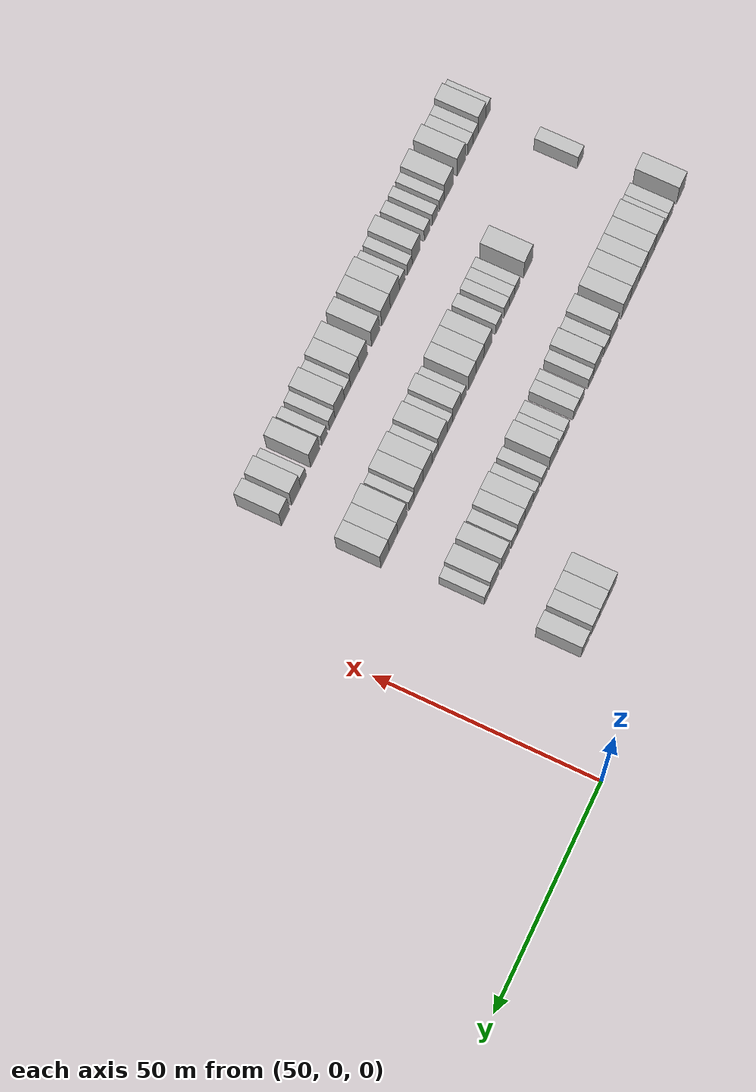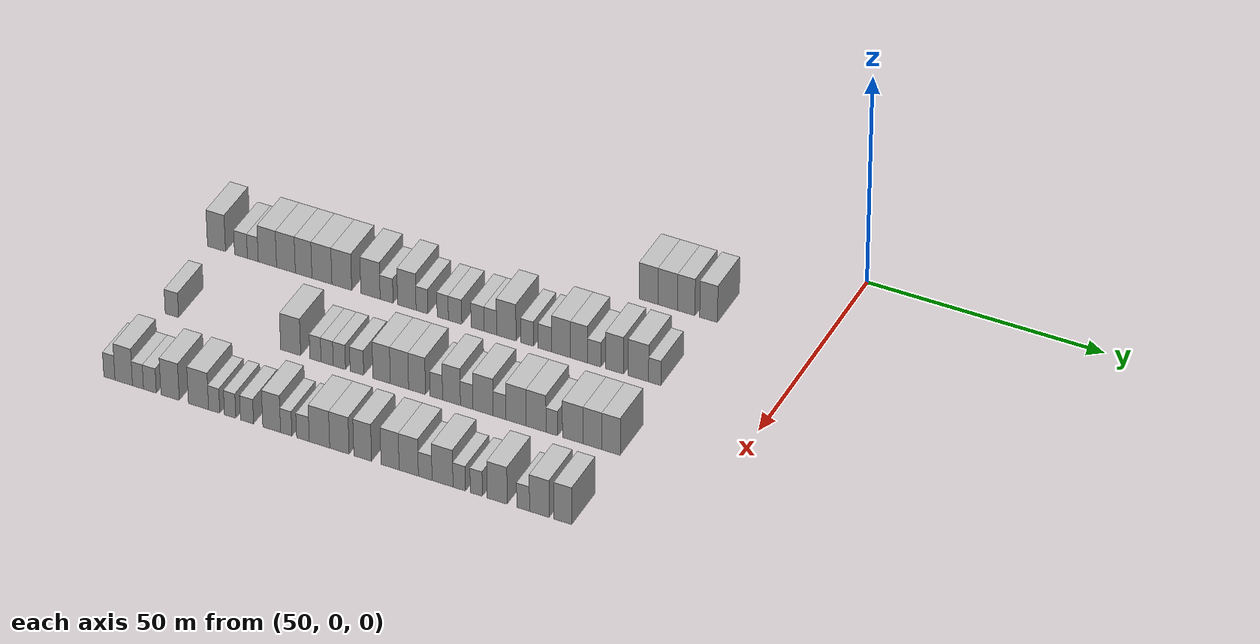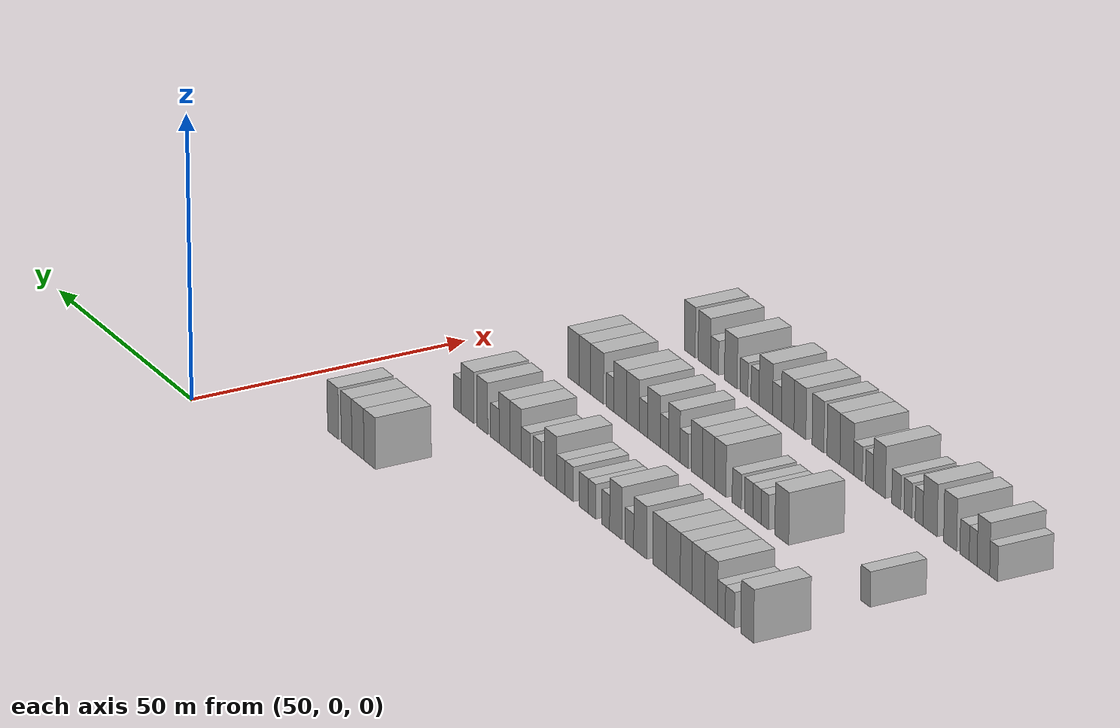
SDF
<sdf version="1.6">
 <world name="default">
  <model name="building_460">
   <static>1</static>
   <pose>69.0000 -35.8244 0 0.000000 0.000000 0.000000</pose>
   <link name="link">
    <pose>0 0 4.50 0 0 0</pose>
    <collision name="collision"><geometry><box><size>10.0000 4.0841 9.0000</size></box></geometry></collision>
    <visual name="visual">
     <cast_shadows>0</cast_shadows>
     <geometry><box><size>10.0000 4.0841 9.0000</size></box></geometry>
     <material>
      <script>
       <uri>model://HANNAS_wall/materials/scripts</uri>
       <uri>model://HANNAS_wall/materials/textures</uri>
       <name>vrc/HANNAS_wall</name>
      </script>
     </material>
    </visual>
   </link>
  </model>
  <model name="building_461">
   <static>1</static>
   <pose>69.0000 -31.6703 0 0.000000 0.000000 0.000000</pose>
   <link name="link">
    <pose>0 0 4.50 0 0 0</pose>
    <collision name="collision"><geometry><box><size>10.0000 4.2240 9.0000</size></box></geometry></collision>
    <visual name="visual">
     <cast_shadows>0</cast_shadows>
     <geometry><box><size>10.0000 4.2240 9.0000</size></box></geometry>
     <material>
      <script>
       <uri>model://HANNAS_wall/materials/scripts</uri>
       <uri>model://HANNAS_wall/materials/textures</uri>
       <name>vrc/HANNAS_wall</name>
      </script>
     </material>
    </visual>
   </link>
  </model>
  <model name="building_462">
   <static>1</static>
   <pose>69.0000 -27.6935 0 0.000000 0.000000 0.000000</pose>
   <link name="link">
    <pose>0 0 4.50 0 0 0</pose>
    <collision name="collision"><geometry><box><size>10.0000 3.7297 9.0000</size></box></geometry></collision>
    <visual name="visual">
     <cast_shadows>0</cast_shadows>
     <geometry><box><size>10.0000 3.7297 9.0000</size></box></geometry>
     <material>
      <script>
       <uri>model://HANNAS_wall/materials/scripts</uri>
       <uri>model://HANNAS_wall/materials/textures</uri>
       <name>vrc/HANNAS_wall</name>
      </script>
     </material>
    </visual>
   </link>
  </model>
  <model name="building_463">
   <static>1</static>
   <pose>69.0000 -22.9201 0 0.000000 0.000000 0.000000</pose>
   <link name="link">
    <pose>0 0 4.50 0 0 0</pose>
    <collision name="collision"><geometry><box><size>10.0000 3.8171 9.0000</size></box></geometry></collision>
    <visual name="visual">
     <cast_shadows>0</cast_shadows>
     <geometry><box><size>10.0000 3.8171 9.0000</size></box></geometry>
     <material>
      <script>
       <uri>model://HANNAS_wall/materials/scripts</uri>
       <uri>model://HANNAS_wall/materials/textures</uri>
       <name>vrc/HANNAS_wall</name>
      </script>
     </material>
    </visual>
   </link>
  </model>
  <model name="building_633">
   <static>1</static>
   <pose>91.0000 -119.1868 0 0.000000 0.000000 0.000000</pose>
   <link name="link">
    <pose>0 0 4.50 0 0 0</pose>
    <collision name="collision"><geometry><box><size>10.0000 3.9976 9.0000</size></box></geometry></collision>
    <visual name="visual">
     <cast_shadows>0</cast_shadows>
     <geometry><box><size>10.0000 3.9976 9.0000</size></box></geometry>
     <material>
      <script>
       <uri>model://HANNAS_wall/materials/scripts</uri>
       <uri>model://HANNAS_wall/materials/textures</uri>
       <name>vrc/HANNAS_wall</name>
      </script>
     </material>
    </visual>
   </link>
  </model>
  <model name="building_634">
   <static>1</static>
   <pose>91.0000 -113.7590 0 0.000000 0.000000 0.000000</pose>
   <link name="link">
    <pose>0 0 3.00 0 0 0</pose>
    <collision name="collision"><geometry><box><size>10.0000 2.8581 6.0000</size></box></geometry></collision>
    <visual name="visual">
     <cast_shadows>0</cast_shadows>
     <geometry><box><size>10.0000 2.8581 6.0000</size></box></geometry>
     <material>
      <script>
       <uri>model://HANNAS_wall/materials/scripts</uri>
       <uri>model://HANNAS_wall/materials/textures</uri>
       <name>vrc/HANNAS_wall</name>
      </script>
     </material>
    </visual>
   </link>
  </model>
  <model name="building_635">
   <static>1</static>
   <pose>91.0000 -111.1251 0 0.000000 0.000000 0.000000</pose>
   <link name="link">
    <pose>0 0 3.00 0 0 0</pose>
    <collision name="collision"><geometry><box><size>10.0000 2.4097 6.0000</size></box></geometry></collision>
    <visual name="visual">
     <cast_shadows>0</cast_shadows>
     <geometry><box><size>10.0000 2.4097 6.0000</size></box></geometry>
     <material>
      <script>
       <uri>model://HANNAS_wall/materials/scripts</uri>
       <uri>model://HANNAS_wall/materials/textures</uri>
       <name>vrc/HANNAS_wall</name>
      </script>
     </material>
    </visual>
   </link>
  </model>
  <model name="building_636">
   <static>1</static>
   <pose>91.0000 -107.9016 0 0.000000 0.000000 0.000000</pose>
   <link name="link">
    <pose>0 0 4.50 0 0 0</pose>
    <collision name="collision"><geometry><box><size>10.0000 4.0375 9.0000</size></box></geometry></collision>
    <visual name="visual">
     <cast_shadows>0</cast_shadows>
     <geometry><box><size>10.0000 4.0375 9.0000</size></box></geometry>
     <material>
      <script>
       <uri>model://HANNAS_wall/materials/scripts</uri>
       <uri>model://HANNAS_wall/materials/textures</uri>
       <name>vrc/HANNAS_wall</name>
      </script>
     </material>
    </visual>
   </link>
  </model>
  <model name="building_637">
   <static>1</static>
   <pose>91.0000 -103.8064 0 0.000000 0.000000 0.000000</pose>
   <link name="link">
    <pose>0 0 4.50 0 0 0</pose>
    <collision name="collision"><geometry><box><size>10.0000 4.1529 9.0000</size></box></geometry></collision>
    <visual name="visual">
     <cast_shadows>0</cast_shadows>
     <geometry><box><size>10.0000 4.1529 9.0000</size></box></geometry>
     <material>
      <script>
       <uri>model://HANNAS_wall/materials/scripts</uri>
       <uri>model://HANNAS_wall/materials/textures</uri>
       <name>vrc/HANNAS_wall</name>
      </script>
     </material>
    </visual>
   </link>
  </model>
  <model name="building_638">
   <static>1</static>
   <pose>91.0000 -99.9014 0 0.000000 0.000000 0.000000</pose>
   <link name="link">
    <pose>0 0 4.50 0 0 0</pose>
    <collision name="collision"><geometry><box><size>10.0000 3.6572 9.0000</size></box></geometry></collision>
    <visual name="visual">
     <cast_shadows>0</cast_shadows>
     <geometry><box><size>10.0000 3.6572 9.0000</size></box></geometry>
     <material>
      <script>
       <uri>model://HANNAS_wall/materials/scripts</uri>
       <uri>model://HANNAS_wall/materials/textures</uri>
       <name>vrc/HANNAS_wall</name>
      </script>
     </material>
    </visual>
   </link>
  </model>
  <model name="building_639">
   <static>1</static>
   <pose>91.0000 -95.8771 0 0.000000 0.000000 0.000000</pose>
   <link name="link">
    <pose>0 0 4.50 0 0 0</pose>
    <collision name="collision"><geometry><box><size>10.0000 4.3915 9.0000</size></box></geometry></collision>
    <visual name="visual">
     <cast_shadows>0</cast_shadows>
     <geometry><box><size>10.0000 4.3915 9.0000</size></box></geometry>
     <material>
      <script>
       <uri>model://HANNAS_wall/materials/scripts</uri>
       <uri>model://HANNAS_wall/materials/textures</uri>
       <name>vrc/HANNAS_wall</name>
      </script>
     </material>
    </visual>
   </link>
  </model>
  <model name="building_640">
   <static>1</static>
   <pose>91.0000 -91.5067 0 0.000000 0.000000 0.000000</pose>
   <link name="link">
    <pose>0 0 4.50 0 0 0</pose>
    <collision name="collision"><geometry><box><size>10.0000 4.3493 9.0000</size></box></geometry></collision>
    <visual name="visual">
     <cast_shadows>0</cast_shadows>
     <geometry><box><size>10.0000 4.3493 9.0000</size></box></geometry>
     <material>
      <script>
       <uri>model://HANNAS_wall/materials/scripts</uri>
       <uri>model://HANNAS_wall/materials/textures</uri>
       <name>vrc/HANNAS_wall</name>
      </script>
     </material>
    </visual>
   </link>
  </model>
  <model name="building_641">
   <static>1</static>
   <pose>91.0000 -85.2189 0 0.000000 0.000000 0.000000</pose>
   <link name="link">
    <pose>0 0 4.50 0 0 0</pose>
    <collision name="collision"><geometry><box><size>10.0000 4.2262 9.0000</size></box></geometry></collision>
    <visual name="visual">
     <cast_shadows>0</cast_shadows>
     <geometry><box><size>10.0000 4.2262 9.0000</size></box></geometry>
     <material>
      <script>
       <uri>model://HANNAS_wall/materials/scripts</uri>
       <uri>model://HANNAS_wall/materials/textures</uri>
       <name>vrc/HANNAS_wall</name>
      </script>
     </material>
    </visual>
   </link>
  </model>
  <model name="building_642">
   <static>1</static>
   <pose>91.0000 -81.6940 0 0.000000 0.000000 0.000000</pose>
   <link name="link">
    <pose>0 0 3.00 0 0 0</pose>
    <collision name="collision"><geometry><box><size>10.0000 2.8236 6.0000</size></box></geometry></collision>
    <visual name="visual">
     <cast_shadows>0</cast_shadows>
     <geometry><box><size>10.0000 2.8236 6.0000</size></box></geometry>
     <material>
      <script>
       <uri>model://HANNAS_wall/materials/scripts</uri>
       <uri>model://HANNAS_wall/materials/textures</uri>
       <name>vrc/HANNAS_wall</name>
      </script>
     </material>
    </visual>
   </link>
  </model>
  <model name="building_643">
   <static>1</static>
   <pose>91.0000 -77.2760 0 0.000000 0.000000 0.000000</pose>
   <link name="link">
    <pose>0 0 4.50 0 0 0</pose>
    <collision name="collision"><geometry><box><size>10.0000 4.0125 9.0000</size></box></geometry></collision>
    <visual name="visual">
     <cast_shadows>0</cast_shadows>
     <geometry><box><size>10.0000 4.0125 9.0000</size></box></geometry>
     <material>
      <script>
       <uri>model://HANNAS_wall/materials/scripts</uri>
       <uri>model://HANNAS_wall/materials/textures</uri>
       <name>vrc/HANNAS_wall</name>
      </script>
     </material>
    </visual>
   </link>
  </model>
  <model name="building_644">
   <static>1</static>
   <pose>91.0000 -73.9786 0 0.000000 0.000000 0.000000</pose>
   <link name="link">
    <pose>0 0 3.00 0 0 0</pose>
    <collision name="collision"><geometry><box><size>10.0000 2.5822 6.0000</size></box></geometry></collision>
    <visual name="visual">
     <cast_shadows>0</cast_shadows>
     <geometry><box><size>10.0000 2.5822 6.0000</size></box></geometry>
     <material>
      <script>
       <uri>model://HANNAS_wall/materials/scripts</uri>
       <uri>model://HANNAS_wall/materials/textures</uri>
       <name>vrc/HANNAS_wall</name>
      </script>
     </material>
    </visual>
   </link>
  </model>
  <model name="building_645">
   <static>1</static>
   <pose>91.0000 -69.4655 0 0.000000 0.000000 0.000000</pose>
   <link name="link">
    <pose>0 0 3.00 0 0 0</pose>
    <collision name="collision"><geometry><box><size>10.0000 2.4438 6.0000</size></box></geometry></collision>
    <visual name="visual">
     <cast_shadows>0</cast_shadows>
     <geometry><box><size>10.0000 2.4438 6.0000</size></box></geometry>
     <material>
      <script>
       <uri>model://HANNAS_wall/materials/scripts</uri>
       <uri>model://HANNAS_wall/materials/textures</uri>
       <name>vrc/HANNAS_wall</name>
      </script>
     </material>
    </visual>
   </link>
  </model>
  <model name="building_646">
   <static>1</static>
   <pose>91.0000 -66.7891 0 0.000000 0.000000 0.000000</pose>
   <link name="link">
    <pose>0 0 3.00 0 0 0</pose>
    <collision name="collision"><geometry><box><size>10.0000 2.9090 6.0000</size></box></geometry></collision>
    <visual name="visual">
     <cast_shadows>0</cast_shadows>
     <geometry><box><size>10.0000 2.9090 6.0000</size></box></geometry>
     <material>
      <script>
       <uri>model://HANNAS_wall/materials/scripts</uri>
       <uri>model://HANNAS_wall/materials/textures</uri>
       <name>vrc/HANNAS_wall</name>
      </script>
     </material>
    </visual>
   </link>
  </model>
  <model name="building_647">
   <static>1</static>
   <pose>91.0000 -61.9415 0 0.000000 0.000000 0.000000</pose>
   <link name="link">
    <pose>0 0 3.00 0 0 0</pose>
    <collision name="collision"><geometry><box><size>10.0000 2.7862 6.0000</size></box></geometry></collision>
    <visual name="visual">
     <cast_shadows>0</cast_shadows>
     <geometry><box><size>10.0000 2.7862 6.0000</size></box></geometry>
     <material>
      <script>
       <uri>model://HANNAS_wall/materials/scripts</uri>
       <uri>model://HANNAS_wall/materials/textures</uri>
       <name>vrc/HANNAS_wall</name>
      </script>
     </material>
    </visual>
   </link>
  </model>
  <model name="building_648">
   <static>1</static>
   <pose>91.0000 -59.1739 0 0.000000 0.000000 0.000000</pose>
   <link name="link">
    <pose>0 0 3.00 0 0 0</pose>
    <collision name="collision"><geometry><box><size>10.0000 2.7491 6.0000</size></box></geometry></collision>
    <visual name="visual">
     <cast_shadows>0</cast_shadows>
     <geometry><box><size>10.0000 2.7491 6.0000</size></box></geometry>
     <material>
      <script>
       <uri>model://HANNAS_wall/materials/scripts</uri>
       <uri>model://HANNAS_wall/materials/textures</uri>
       <name>vrc/HANNAS_wall</name>
      </script>
     </material>
    </visual>
   </link>
  </model>
  <model name="building_649">
   <static>1</static>
   <pose>91.0000 -55.7033 0 0.000000 0.000000 0.000000</pose>
   <link name="link">
    <pose>0 0 4.50 0 0 0</pose>
    <collision name="collision"><geometry><box><size>10.0000 4.1919 9.0000</size></box></geometry></collision>
    <visual name="visual">
     <cast_shadows>0</cast_shadows>
     <geometry><box><size>10.0000 4.1919 9.0000</size></box></geometry>
     <material>
      <script>
       <uri>model://HANNAS_wall/materials/scripts</uri>
       <uri>model://HANNAS_wall/materials/textures</uri>
       <name>vrc/HANNAS_wall</name>
      </script>
     </material>
    </visual>
   </link>
  </model>
  <model name="building_650">
   <static>1</static>
   <pose>91.0000 -51.2321 0 0.000000 0.000000 0.000000</pose>
   <link name="link">
    <pose>0 0 3.00 0 0 0</pose>
    <collision name="collision"><geometry><box><size>10.0000 2.7505 6.0000</size></box></geometry></collision>
    <visual name="visual">
     <cast_shadows>0</cast_shadows>
     <geometry><box><size>10.0000 2.7505 6.0000</size></box></geometry>
     <material>
      <script>
       <uri>model://HANNAS_wall/materials/scripts</uri>
       <uri>model://HANNAS_wall/materials/textures</uri>
       <name>vrc/HANNAS_wall</name>
      </script>
     </material>
    </visual>
   </link>
  </model>
  <model name="building_651">
   <static>1</static>
   <pose>91.0000 -47.3952 0 0.000000 0.000000 0.000000</pose>
   <link name="link">
    <pose>0 0 3.00 0 0 0</pose>
    <collision name="collision"><geometry><box><size>10.0000 2.9234 6.0000</size></box></geometry></collision>
    <visual name="visual">
     <cast_shadows>0</cast_shadows>
     <geometry><box><size>10.0000 2.9234 6.0000</size></box></geometry>
     <material>
      <script>
       <uri>model://HANNAS_wall/materials/scripts</uri>
       <uri>model://HANNAS_wall/materials/textures</uri>
       <name>vrc/HANNAS_wall</name>
      </script>
     </material>
    </visual>
   </link>
  </model>
  <model name="building_652">
   <static>1</static>
   <pose>91.0000 -43.9113 0 0.000000 0.000000 0.000000</pose>
   <link name="link">
    <pose>0 0 4.50 0 0 0</pose>
    <collision name="collision"><geometry><box><size>10.0000 4.0444 9.0000</size></box></geometry></collision>
    <visual name="visual">
     <cast_shadows>0</cast_shadows>
     <geometry><box><size>10.0000 4.0444 9.0000</size></box></geometry>
     <material>
      <script>
       <uri>model://HANNAS_wall/materials/scripts</uri>
       <uri>model://HANNAS_wall/materials/textures</uri>
       <name>vrc/HANNAS_wall</name>
      </script>
     </material>
    </visual>
   </link>
  </model>
  <model name="building_653">
   <static>1</static>
   <pose>91.0000 -40.0867 0 0.000000 0.000000 0.000000</pose>
   <link name="link">
    <pose>0 0 4.50 0 0 0</pose>
    <collision name="collision"><geometry><box><size>10.0000 3.6049 9.0000</size></box></geometry></collision>
    <visual name="visual">
     <cast_shadows>0</cast_shadows>
     <geometry><box><size>10.0000 3.6049 9.0000</size></box></geometry>
     <material>
      <script>
       <uri>model://HANNAS_wall/materials/scripts</uri>
       <uri>model://HANNAS_wall/materials/textures</uri>
       <name>vrc/HANNAS_wall</name>
      </script>
     </material>
    </visual>
   </link>
  </model>
  <model name="building_654">
   <static>1</static>
   <pose>91.0000 -36.8479 0 0.000000 0.000000 0.000000</pose>
   <link name="link">
    <pose>0 0 3.00 0 0 0</pose>
    <collision name="collision"><geometry><box><size>10.0000 2.8727 6.0000</size></box></geometry></collision>
    <visual name="visual">
     <cast_shadows>0</cast_shadows>
     <geometry><box><size>10.0000 2.8727 6.0000</size></box></geometry>
     <material>
      <script>
       <uri>model://HANNAS_wall/materials/scripts</uri>
       <uri>model://HANNAS_wall/materials/textures</uri>
       <name>vrc/HANNAS_wall</name>
      </script>
     </material>
    </visual>
   </link>
  </model>
  <model name="building_655">
   <static>1</static>
   <pose>91.0000 -32.4889 0 0.000000 0.000000 0.000000</pose>
   <link name="link">
    <pose>0 0 4.50 0 0 0</pose>
    <collision name="collision"><geometry><box><size>10.0000 3.8451 9.0000</size></box></geometry></collision>
    <visual name="visual">
     <cast_shadows>0</cast_shadows>
     <geometry><box><size>10.0000 3.8451 9.0000</size></box></geometry>
     <material>
      <script>
       <uri>model://HANNAS_wall/materials/scripts</uri>
       <uri>model://HANNAS_wall/materials/textures</uri>
       <name>vrc/HANNAS_wall</name>
      </script>
     </material>
    </visual>
   </link>
  </model>
  <model name="building_656">
   <static>1</static>
   <pose>91.0000 -27.4007 0 0.000000 0.000000 0.000000</pose>
   <link name="link">
    <pose>0 0 4.50 0 0 0</pose>
    <collision name="collision"><geometry><box><size>10.0000 4.3313 9.0000</size></box></geometry></collision>
    <visual name="visual">
     <cast_shadows>0</cast_shadows>
     <geometry><box><size>10.0000 4.3313 9.0000</size></box></geometry>
     <material>
      <script>
       <uri>model://HANNAS_wall/materials/scripts</uri>
       <uri>model://HANNAS_wall/materials/textures</uri>
       <name>vrc/HANNAS_wall</name>
      </script>
     </material>
    </visual>
   </link>
  </model>
  <model name="building_657">
   <static>1</static>
   <pose>91.0000 -23.9359 0 0.000000 0.000000 0.000000</pose>
   <link name="link">
    <pose>0 0 3.00 0 0 0</pose>
    <collision name="collision"><geometry><box><size>10.0000 2.5983 6.0000</size></box></geometry></collision>
    <visual name="visual">
     <cast_shadows>0</cast_shadows>
     <geometry><box><size>10.0000 2.5983 6.0000</size></box></geometry>
     <material>
      <script>
       <uri>model://HANNAS_wall/materials/scripts</uri>
       <uri>model://HANNAS_wall/materials/textures</uri>
       <name>vrc/HANNAS_wall</name>
      </script>
     </material>
    </visual>
   </link>
  </model>
  <model name="building_811">
   <static>1</static>
   <pose>113.0000 -117.1228 0 0.000000 0.000000 0.000000</pose>
   <link name="link">
    <pose>0 0 3.00 0 0 0</pose>
    <collision name="collision"><geometry><box><size>10.0000 2.9531 6.0000</size></box></geometry></collision>
    <visual name="visual">
     <cast_shadows>0</cast_shadows>
     <geometry><box><size>10.0000 2.9531 6.0000</size></box></geometry>
     <material>
      <script>
       <uri>model://HANNAS_wall/materials/scripts</uri>
       <uri>model://HANNAS_wall/materials/textures</uri>
       <name>vrc/HANNAS_wall</name>
      </script>
     </material>
    </visual>
   </link>
  </model>
  <model name="building_812">
   <static>1</static>
   <pose>113.0000 -91.1117 0 0.000000 0.000000 0.000000</pose>
   <link name="link">
    <pose>0 0 4.50 0 0 0</pose>
    <collision name="collision"><geometry><box><size>10.0000 4.3564 9.0000</size></box></geometry></collision>
    <visual name="visual">
     <cast_shadows>0</cast_shadows>
     <geometry><box><size>10.0000 4.3564 9.0000</size></box></geometry>
     <material>
      <script>
       <uri>model://HANNAS_wall/materials/scripts</uri>
       <uri>model://HANNAS_wall/materials/textures</uri>
       <name>vrc/HANNAS_wall</name>
      </script>
     </material>
    </visual>
   </link>
  </model>
  <model name="building_813">
   <static>1</static>
   <pose>113.0000 -85.7223 0 0.000000 0.000000 0.000000</pose>
   <link name="link">
    <pose>0 0 3.00 0 0 0</pose>
    <collision name="collision"><geometry><box><size>10.0000 2.4225 6.0000</size></box></geometry></collision>
    <visual name="visual">
     <cast_shadows>0</cast_shadows>
     <geometry><box><size>10.0000 2.4225 6.0000</size></box></geometry>
     <material>
      <script>
       <uri>model://HANNAS_wall/materials/scripts</uri>
       <uri>model://HANNAS_wall/materials/textures</uri>
       <name>vrc/HANNAS_wall</name>
      </script>
     </material>
    </visual>
   </link>
  </model>
  <model name="building_814">
   <static>1</static>
   <pose>113.0000 -83.1946 0 0.000000 0.000000 0.000000</pose>
   <link name="link">
    <pose>0 0 3.00 0 0 0</pose>
    <collision name="collision"><geometry><box><size>10.0000 2.6330 6.0000</size></box></geometry></collision>
    <visual name="visual">
     <cast_shadows>0</cast_shadows>
     <geometry><box><size>10.0000 2.6330 6.0000</size></box></geometry>
     <material>
      <script>
       <uri>model://HANNAS_wall/materials/scripts</uri>
       <uri>model://HANNAS_wall/materials/textures</uri>
       <name>vrc/HANNAS_wall</name>
      </script>
     </material>
    </visual>
   </link>
  </model>
  <model name="building_815">
   <static>1</static>
   <pose>113.0000 -80.5475 0 0.000000 0.000000 0.000000</pose>
   <link name="link">
    <pose>0 0 3.00 0 0 0</pose>
    <collision name="collision"><geometry><box><size>10.0000 2.6612 6.0000</size></box></geometry></collision>
    <visual name="visual">
     <cast_shadows>0</cast_shadows>
     <geometry><box><size>10.0000 2.6612 6.0000</size></box></geometry>
     <material>
      <script>
       <uri>model://HANNAS_wall/materials/scripts</uri>
       <uri>model://HANNAS_wall/materials/textures</uri>
       <name>vrc/HANNAS_wall</name>
      </script>
     </material>
    </visual>
   </link>
  </model>
  <model name="building_816">
   <static>1</static>
   <pose>113.0000 -76.7504 0 0.000000 0.000000 0.000000</pose>
   <link name="link">
    <pose>0 0 3.00 0 0 0</pose>
    <collision name="collision"><geometry><box><size>10.0000 2.9329 6.0000</size></box></geometry></collision>
    <visual name="visual">
     <cast_shadows>0</cast_shadows>
     <geometry><box><size>10.0000 2.9329 6.0000</size></box></geometry>
     <material>
      <script>
       <uri>model://HANNAS_wall/materials/scripts</uri>
       <uri>model://HANNAS_wall/materials/textures</uri>
       <name>vrc/HANNAS_wall</name>
      </script>
     </material>
    </visual>
   </link>
  </model>
  <model name="building_817">
   <static>1</static>
   <pose>113.0000 -71.4117 0 0.000000 0.000000 0.000000</pose>
   <link name="link">
    <pose>0 0 4.50 0 0 0</pose>
    <collision name="collision"><geometry><box><size>10.0000 3.7446 9.0000</size></box></geometry></collision>
    <visual name="visual">
     <cast_shadows>0</cast_shadows>
     <geometry><box><size>10.0000 3.7446 9.0000</size></box></geometry>
     <material>
      <script>
       <uri>model://HANNAS_wall/materials/scripts</uri>
       <uri>model://HANNAS_wall/materials/textures</uri>
       <name>vrc/HANNAS_wall</name>
      </script>
     </material>
    </visual>
   </link>
  </model>
  <model name="building_818">
   <static>1</static>
   <pose>113.0000 -67.5784 0 0.000000 0.000000 0.000000</pose>
   <link name="link">
    <pose>0 0 4.50 0 0 0</pose>
    <collision name="collision"><geometry><box><size>10.0000 3.9219 9.0000</size></box></geometry></collision>
    <visual name="visual">
     <cast_shadows>0</cast_shadows>
     <geometry><box><size>10.0000 3.9219 9.0000</size></box></geometry>
     <material>
      <script>
       <uri>model://HANNAS_wall/materials/scripts</uri>
       <uri>model://HANNAS_wall/materials/textures</uri>
       <name>vrc/HANNAS_wall</name>
      </script>
     </material>
    </visual>
   </link>
  </model>
  <model name="building_819">
   <static>1</static>
   <pose>113.0000 -63.8027 0 0.000000 0.000000 0.000000</pose>
   <link name="link">
    <pose>0 0 4.50 0 0 0</pose>
    <collision name="collision"><geometry><box><size>10.0000 3.6295 9.0000</size></box></geometry></collision>
    <visual name="visual">
     <cast_shadows>0</cast_shadows>
     <geometry><box><size>10.0000 3.6295 9.0000</size></box></geometry>
     <material>
      <script>
       <uri>model://HANNAS_wall/materials/scripts</uri>
       <uri>model://HANNAS_wall/materials/textures</uri>
       <name>vrc/HANNAS_wall</name>
      </script>
     </material>
    </visual>
   </link>
  </model>
  <model name="building_820">
   <static>1</static>
   <pose>113.0000 -59.6570 0 0.000000 0.000000 0.000000</pose>
   <link name="link">
    <pose>0 0 3.00 0 0 0</pose>
    <collision name="collision"><geometry><box><size>10.0000 2.6620 6.0000</size></box></geometry></collision>
    <visual name="visual">
     <cast_shadows>0</cast_shadows>
     <geometry><box><size>10.0000 2.6620 6.0000</size></box></geometry>
     <material>
      <script>
       <uri>model://HANNAS_wall/materials/scripts</uri>
       <uri>model://HANNAS_wall/materials/textures</uri>
       <name>vrc/HANNAS_wall</name>
      </script>
     </material>
    </visual>
   </link>
  </model>
  <model name="building_821">
   <static>1</static>
   <pose>113.0000 -56.4187 0 0.000000 0.000000 0.000000</pose>
   <link name="link">
    <pose>0 0 4.50 0 0 0</pose>
    <collision name="collision"><geometry><box><size>10.0000 3.8146 9.0000</size></box></geometry></collision>
    <visual name="visual">
     <cast_shadows>0</cast_shadows>
     <geometry><box><size>10.0000 3.8146 9.0000</size></box></geometry>
     <material>
      <script>
       <uri>model://HANNAS_wall/materials/scripts</uri>
       <uri>model://HANNAS_wall/materials/textures</uri>
       <name>vrc/HANNAS_wall</name>
      </script>
     </material>
    </visual>
   </link>
  </model>
  <model name="building_822">
   <static>1</static>
   <pose>113.0000 -53.1751 0 0.000000 0.000000 0.000000</pose>
   <link name="link">
    <pose>0 0 3.00 0 0 0</pose>
    <collision name="collision"><geometry><box><size>10.0000 2.6726 6.0000</size></box></geometry></collision>
    <visual name="visual">
     <cast_shadows>0</cast_shadows>
     <geometry><box><size>10.0000 2.6726 6.0000</size></box></geometry>
     <material>
      <script>
       <uri>model://HANNAS_wall/materials/scripts</uri>
       <uri>model://HANNAS_wall/materials/textures</uri>
       <name>vrc/HANNAS_wall</name>
      </script>
     </material>
    </visual>
   </link>
  </model>
  <model name="building_823">
   <static>1</static>
   <pose>113.0000 -49.6896 0 0.000000 0.000000 0.000000</pose>
   <link name="link">
    <pose>0 0 4.50 0 0 0</pose>
    <collision name="collision"><geometry><box><size>10.0000 4.2986 9.0000</size></box></geometry></collision>
    <visual name="visual">
     <cast_shadows>0</cast_shadows>
     <geometry><box><size>10.0000 4.2986 9.0000</size></box></geometry>
     <material>
      <script>
       <uri>model://HANNAS_wall/materials/scripts</uri>
       <uri>model://HANNAS_wall/materials/textures</uri>
       <name>vrc/HANNAS_wall</name>
      </script>
     </material>
    </visual>
   </link>
  </model>
  <model name="building_824">
   <static>1</static>
   <pose>113.0000 -46.1806 0 0.000000 0.000000 0.000000</pose>
   <link name="link">
    <pose>0 0 3.00 0 0 0</pose>
    <collision name="collision"><geometry><box><size>10.0000 2.7193 6.0000</size></box></geometry></collision>
    <visual name="visual">
     <cast_shadows>0</cast_shadows>
     <geometry><box><size>10.0000 2.7193 6.0000</size></box></geometry>
     <material>
      <script>
       <uri>model://HANNAS_wall/materials/scripts</uri>
       <uri>model://HANNAS_wall/materials/textures</uri>
       <name>vrc/HANNAS_wall</name>
      </script>
     </material>
    </visual>
   </link>
  </model>
  <model name="building_825">
   <static>1</static>
   <pose>113.0000 -42.6719 0 0.000000 0.000000 0.000000</pose>
   <link name="link">
    <pose>0 0 4.50 0 0 0</pose>
    <collision name="collision"><geometry><box><size>10.0000 4.2981 9.0000</size></box></geometry></collision>
    <visual name="visual">
     <cast_shadows>0</cast_shadows>
     <geometry><box><size>10.0000 4.2981 9.0000</size></box></geometry>
     <material>
      <script>
       <uri>model://HANNAS_wall/materials/scripts</uri>
       <uri>model://HANNAS_wall/materials/textures</uri>
       <name>vrc/HANNAS_wall</name>
      </script>
     </material>
    </visual>
   </link>
  </model>
  <model name="building_826">
   <static>1</static>
   <pose>113.0000 -38.4016 0 0.000000 0.000000 0.000000</pose>
   <link name="link">
    <pose>0 0 4.50 0 0 0</pose>
    <collision name="collision"><geometry><box><size>10.0000 4.2425 9.0000</size></box></geometry></collision>
    <visual name="visual">
     <cast_shadows>0</cast_shadows>
     <geometry><box><size>10.0000 4.2425 9.0000</size></box></geometry>
     <material>
      <script>
       <uri>model://HANNAS_wall/materials/scripts</uri>
       <uri>model://HANNAS_wall/materials/textures</uri>
       <name>vrc/HANNAS_wall</name>
      </script>
     </material>
    </visual>
   </link>
  </model>
  <model name="building_827">
   <static>1</static>
   <pose>113.0000 -35.0480 0 0.000000 0.000000 0.000000</pose>
   <link name="link">
    <pose>0 0 3.00 0 0 0</pose>
    <collision name="collision"><geometry><box><size>10.0000 2.4647 6.0000</size></box></geometry></collision>
    <visual name="visual">
     <cast_shadows>0</cast_shadows>
     <geometry><box><size>10.0000 2.4647 6.0000</size></box></geometry>
     <material>
      <script>
       <uri>model://HANNAS_wall/materials/scripts</uri>
       <uri>model://HANNAS_wall/materials/textures</uri>
       <name>vrc/HANNAS_wall</name>
      </script>
     </material>
    </visual>
   </link>
  </model>
  <model name="building_828">
   <static>1</static>
   <pose>113.0000 -30.6238 0 0.000000 0.000000 0.000000</pose>
   <link name="link">
    <pose>0 0 4.50 0 0 0</pose>
    <collision name="collision"><geometry><box><size>10.0000 4.3836 9.0000</size></box></geometry></collision>
    <visual name="visual">
     <cast_shadows>0</cast_shadows>
     <geometry><box><size>10.0000 4.3836 9.0000</size></box></geometry>
     <material>
      <script>
       <uri>model://HANNAS_wall/materials/scripts</uri>
       <uri>model://HANNAS_wall/materials/textures</uri>
       <name>vrc/HANNAS_wall</name>
      </script>
     </material>
    </visual>
   </link>
  </model>
  <model name="building_829">
   <static>1</static>
   <pose>113.0000 -26.4779 0 0.000000 0.000000 0.000000</pose>
   <link name="link">
    <pose>0 0 4.50 0 0 0</pose>
    <collision name="collision"><geometry><box><size>10.0000 3.9083 9.0000</size></box></geometry></collision>
    <visual name="visual">
     <cast_shadows>0</cast_shadows>
     <geometry><box><size>10.0000 3.9083 9.0000</size></box></geometry>
     <material>
      <script>
       <uri>model://HANNAS_wall/materials/scripts</uri>
       <uri>model://HANNAS_wall/materials/textures</uri>
       <name>vrc/HANNAS_wall</name>
      </script>
     </material>
    </visual>
   </link>
  </model>
  <model name="building_830">
   <static>1</static>
   <pose>113.0000 -22.5783 0 0.000000 0.000000 0.000000</pose>
   <link name="link">
    <pose>0 0 4.50 0 0 0</pose>
    <collision name="collision"><geometry><box><size>10.0000 3.8909 9.0000</size></box></geometry></collision>
    <visual name="visual">
     <cast_shadows>0</cast_shadows>
     <geometry><box><size>10.0000 3.8909 9.0000</size></box></geometry>
     <material>
      <script>
       <uri>model://HANNAS_wall/materials/scripts</uri>
       <uri>model://HANNAS_wall/materials/textures</uri>
       <name>vrc/HANNAS_wall</name>
      </script>
     </material>
    </visual>
   </link>
  </model>
  <model name="building_1002">
   <static>1</static>
   <pose>135.0000 -118.7581 0 0.000000 0.000000 0.000000</pose>
   <link name="link">
    <pose>0 0 3.00 0 0 0</pose>
    <collision name="collision"><geometry><box><size>10.0000 2.4250 6.0000</size></box></geometry></collision>
    <visual name="visual">
     <cast_shadows>0</cast_shadows>
     <geometry><box><size>10.0000 2.4250 6.0000</size></box></geometry>
     <material>
      <script>
       <uri>model://HANNAS_wall/materials/scripts</uri>
       <uri>model://HANNAS_wall/materials/textures</uri>
       <name>vrc/HANNAS_wall</name>
      </script>
     </material>
    </visual>
   </link>
  </model>
  <model name="building_1003">
   <static>1</static>
   <pose>135.0000 -115.6324 0 0.000000 0.000000 0.000000</pose>
   <link name="link">
    <pose>0 0 4.50 0 0 0</pose>
    <collision name="collision"><geometry><box><size>10.0000 3.8265 9.0000</size></box></geometry></collision>
    <visual name="visual">
     <cast_shadows>0</cast_shadows>
     <geometry><box><size>10.0000 3.8265 9.0000</size></box></geometry>
     <material>
      <script>
       <uri>model://HANNAS_wall/materials/scripts</uri>
       <uri>model://HANNAS_wall/materials/textures</uri>
       <name>vrc/HANNAS_wall</name>
      </script>
     </material>
    </visual>
   </link>
  </model>
  <model name="building_1004">
   <static>1</static>
   <pose>135.0000 -112.5136 0 0.000000 0.000000 0.000000</pose>
   <link name="link">
    <pose>0 0 3.00 0 0 0</pose>
    <collision name="collision"><geometry><box><size>10.0000 2.4110 6.0000</size></box></geometry></collision>
    <visual name="visual">
     <cast_shadows>0</cast_shadows>
     <geometry><box><size>10.0000 2.4110 6.0000</size></box></geometry>
     <material>
      <script>
       <uri>model://HANNAS_wall/materials/scripts</uri>
       <uri>model://HANNAS_wall/materials/textures</uri>
       <name>vrc/HANNAS_wall</name>
      </script>
     </material>
    </visual>
   </link>
  </model>
  <model name="building_1005">
   <static>1</static>
   <pose>135.0000 -109.9094 0 0.000000 0.000000 0.000000</pose>
   <link name="link">
    <pose>0 0 3.00 0 0 0</pose>
    <collision name="collision"><geometry><box><size>10.0000 2.7975 6.0000</size></box></geometry></collision>
    <visual name="visual">
     <cast_shadows>0</cast_shadows>
     <geometry><box><size>10.0000 2.7975 6.0000</size></box></geometry>
     <material>
      <script>
       <uri>model://HANNAS_wall/materials/scripts</uri>
       <uri>model://HANNAS_wall/materials/textures</uri>
       <name>vrc/HANNAS_wall</name>
      </script>
     </material>
    </visual>
   </link>
  </model>
  <model name="building_1006">
   <static>1</static>
   <pose>135.0000 -105.5211 0 0.000000 0.000000 0.000000</pose>
   <link name="link">
    <pose>0 0 4.50 0 0 0</pose>
    <collision name="collision"><geometry><box><size>10.0000 3.9789 9.0000</size></box></geometry></collision>
    <visual name="visual">
     <cast_shadows>0</cast_shadows>
     <geometry><box><size>10.0000 3.9789 9.0000</size></box></geometry>
     <material>
      <script>
       <uri>model://HANNAS_wall/materials/scripts</uri>
       <uri>model://HANNAS_wall/materials/textures</uri>
       <name>vrc/HANNAS_wall</name>
      </script>
     </material>
    </visual>
   </link>
  </model>
  <model name="building_1007">
   <static>1</static>
   <pose>135.0000 -99.3479 0 0.000000 0.000000 0.000000</pose>
   <link name="link">
    <pose>0 0 4.50 0 0 0</pose>
    <collision name="collision"><geometry><box><size>10.0000 4.3676 9.0000</size></box></geometry></collision>
    <visual name="visual">
     <cast_shadows>0</cast_shadows>
     <geometry><box><size>10.0000 4.3676 9.0000</size></box></geometry>
     <material>
      <script>
       <uri>model://HANNAS_wall/materials/scripts</uri>
       <uri>model://HANNAS_wall/materials/textures</uri>
       <name>vrc/HANNAS_wall</name>
      </script>
     </material>
    </visual>
   </link>
  </model>
  <model name="building_1008">
   <static>1</static>
   <pose>135.0000 -95.9514 0 0.000000 0.000000 0.000000</pose>
   <link name="link">
    <pose>0 0 3.00 0 0 0</pose>
    <collision name="collision"><geometry><box><size>10.0000 2.4254 6.0000</size></box></geometry></collision>
    <visual name="visual">
     <cast_shadows>0</cast_shadows>
     <geometry><box><size>10.0000 2.4254 6.0000</size></box></geometry>
     <material>
      <script>
       <uri>model://HANNAS_wall/materials/scripts</uri>
       <uri>model://HANNAS_wall/materials/textures</uri>
       <name>vrc/HANNAS_wall</name>
      </script>
     </material>
    </visual>
   </link>
  </model>
  <model name="building_1009">
   <static>1</static>
   <pose>135.0000 -92.5070 0 0.000000 0.000000 0.000000</pose>
   <link name="link">
    <pose>0 0 3.00 0 0 0</pose>
    <collision name="collision"><geometry><box><size>10.0000 2.4634 6.0000</size></box></geometry></collision>
    <visual name="visual">
     <cast_shadows>0</cast_shadows>
     <geometry><box><size>10.0000 2.4634 6.0000</size></box></geometry>
     <material>
      <script>
       <uri>model://HANNAS_wall/materials/scripts</uri>
       <uri>model://HANNAS_wall/materials/textures</uri>
       <name>vrc/HANNAS_wall</name>
      </script>
     </material>
    </visual>
   </link>
  </model>
  <model name="building_1010">
   <static>1</static>
   <pose>135.0000 -88.8653 0 0.000000 0.000000 0.000000</pose>
   <link name="link">
    <pose>0 0 3.00 0 0 0</pose>
    <collision name="collision"><geometry><box><size>10.0000 2.8201 6.0000</size></box></geometry></collision>
    <visual name="visual">
     <cast_shadows>0</cast_shadows>
     <geometry><box><size>10.0000 2.8201 6.0000</size></box></geometry>
     <material>
      <script>
       <uri>model://HANNAS_wall/materials/scripts</uri>
       <uri>model://HANNAS_wall/materials/textures</uri>
       <name>vrc/HANNAS_wall</name>
      </script>
     </material>
    </visual>
   </link>
  </model>
  <model name="building_1011">
   <static>1</static>
   <pose>135.0000 -83.5465 0 0.000000 0.000000 0.000000</pose>
   <link name="link">
    <pose>0 0 4.50 0 0 0</pose>
    <collision name="collision"><geometry><box><size>10.0000 3.8174 9.0000</size></box></geometry></collision>
    <visual name="visual">
     <cast_shadows>0</cast_shadows>
     <geometry><box><size>10.0000 3.8174 9.0000</size></box></geometry>
     <material>
      <script>
       <uri>model://HANNAS_wall/materials/scripts</uri>
       <uri>model://HANNAS_wall/materials/textures</uri>
       <name>vrc/HANNAS_wall</name>
      </script>
     </material>
    </visual>
   </link>
  </model>
  <model name="building_1012">
   <static>1</static>
   <pose>135.0000 -80.4226 0 0.000000 0.000000 0.000000</pose>
   <link name="link">
    <pose>0 0 3.00 0 0 0</pose>
    <collision name="collision"><geometry><box><size>10.0000 2.4304 6.0000</size></box></geometry></collision>
    <visual name="visual">
     <cast_shadows>0</cast_shadows>
     <geometry><box><size>10.0000 2.4304 6.0000</size></box></geometry>
     <material>
      <script>
       <uri>model://HANNAS_wall/materials/scripts</uri>
       <uri>model://HANNAS_wall/materials/textures</uri>
       <name>vrc/HANNAS_wall</name>
      </script>
     </material>
    </visual>
   </link>
  </model>
  <model name="building_1013">
   <static>1</static>
   <pose>135.0000 -76.8469 0 0.000000 0.000000 0.000000</pose>
   <link name="link">
    <pose>0 0 3.00 0 0 0</pose>
    <collision name="collision"><geometry><box><size>10.0000 2.7209 6.0000</size></box></geometry></collision>
    <visual name="visual">
     <cast_shadows>0</cast_shadows>
     <geometry><box><size>10.0000 2.7209 6.0000</size></box></geometry>
     <material>
      <script>
       <uri>model://HANNAS_wall/materials/scripts</uri>
       <uri>model://HANNAS_wall/materials/textures</uri>
       <name>vrc/HANNAS_wall</name>
      </script>
     </material>
    </visual>
   </link>
  </model>
  <model name="building_1014">
   <static>1</static>
   <pose>135.0000 -73.2995 0 0.000000 0.000000 0.000000</pose>
   <link name="link">
    <pose>0 0 4.50 0 0 0</pose>
    <collision name="collision"><geometry><box><size>10.0000 4.3739 9.0000</size></box></geometry></collision>
    <visual name="visual">
     <cast_shadows>0</cast_shadows>
     <geometry><box><size>10.0000 4.3739 9.0000</size></box></geometry>
     <material>
      <script>
       <uri>model://HANNAS_wall/materials/scripts</uri>
       <uri>model://HANNAS_wall/materials/textures</uri>
       <name>vrc/HANNAS_wall</name>
      </script>
     </material>
    </visual>
   </link>
  </model>
  <model name="building_1015">
   <static>1</static>
   <pose>135.0000 -69.0391 0 0.000000 0.000000 0.000000</pose>
   <link name="link">
    <pose>0 0 4.50 0 0 0</pose>
    <collision name="collision"><geometry><box><size>10.0000 4.1470 9.0000</size></box></geometry></collision>
    <visual name="visual">
     <cast_shadows>0</cast_shadows>
     <geometry><box><size>10.0000 4.1470 9.0000</size></box></geometry>
     <material>
      <script>
       <uri>model://HANNAS_wall/materials/scripts</uri>
       <uri>model://HANNAS_wall/materials/textures</uri>
       <name>vrc/HANNAS_wall</name>
      </script>
     </material>
    </visual>
   </link>
  </model>
  <model name="building_1016">
   <static>1</static>
   <pose>135.0000 -64.0762 0 0.000000 0.000000 0.000000</pose>
   <link name="link">
    <pose>0 0 4.50 0 0 0</pose>
    <collision name="collision"><geometry><box><size>10.0000 3.7788 9.0000</size></box></geometry></collision>
    <visual name="visual">
     <cast_shadows>0</cast_shadows>
     <geometry><box><size>10.0000 3.7788 9.0000</size></box></geometry>
     <material>
      <script>
       <uri>model://HANNAS_wall/materials/scripts</uri>
       <uri>model://HANNAS_wall/materials/textures</uri>
       <name>vrc/HANNAS_wall</name>
      </script>
     </material>
    </visual>
   </link>
  </model>
  <model name="building_1017">
   <static>1</static>
   <pose>135.0000 -58.2658 0 0.000000 0.000000 0.000000</pose>
   <link name="link">
    <pose>0 0 4.50 0 0 0</pose>
    <collision name="collision"><geometry><box><size>10.0000 3.8419 9.0000</size></box></geometry></collision>
    <visual name="visual">
     <cast_shadows>0</cast_shadows>
     <geometry><box><size>10.0000 3.8419 9.0000</size></box></geometry>
     <material>
      <script>
       <uri>model://HANNAS_wall/materials/scripts</uri>
       <uri>model://HANNAS_wall/materials/textures</uri>
       <name>vrc/HANNAS_wall</name>
      </script>
     </material>
    </visual>
   </link>
  </model>
  <model name="building_1018">
   <static>1</static>
   <pose>135.0000 -54.3046 0 0.000000 0.000000 0.000000</pose>
   <link name="link">
    <pose>0 0 4.50 0 0 0</pose>
    <collision name="collision"><geometry><box><size>10.0000 4.0805 9.0000</size></box></geometry></collision>
    <visual name="visual">
     <cast_shadows>0</cast_shadows>
     <geometry><box><size>10.0000 4.0805 9.0000</size></box></geometry>
     <material>
      <script>
       <uri>model://HANNAS_wall/materials/scripts</uri>
       <uri>model://HANNAS_wall/materials/textures</uri>
       <name>vrc/HANNAS_wall</name>
      </script>
     </material>
    </visual>
   </link>
  </model>
  <model name="building_1019">
   <static>1</static>
   <pose>135.0000 -50.8200 0 0.000000 0.000000 0.000000</pose>
   <link name="link">
    <pose>0 0 3.00 0 0 0</pose>
    <collision name="collision"><geometry><box><size>10.0000 2.8888 6.0000</size></box></geometry></collision>
    <visual name="visual">
     <cast_shadows>0</cast_shadows>
     <geometry><box><size>10.0000 2.8888 6.0000</size></box></geometry>
     <material>
      <script>
       <uri>model://HANNAS_wall/materials/scripts</uri>
       <uri>model://HANNAS_wall/materials/textures</uri>
       <name>vrc/HANNAS_wall</name>
      </script>
     </material>
    </visual>
   </link>
  </model>
  <model name="building_1020">
   <static>1</static>
   <pose>135.0000 -47.1613 0 0.000000 0.000000 0.000000</pose>
   <link name="link">
    <pose>0 0 4.50 0 0 0</pose>
    <collision name="collision"><geometry><box><size>10.0000 4.4287 9.0000</size></box></geometry></collision>
    <visual name="visual">
     <cast_shadows>0</cast_shadows>
     <geometry><box><size>10.0000 4.4287 9.0000</size></box></geometry>
     <material>
      <script>
       <uri>model://HANNAS_wall/materials/scripts</uri>
       <uri>model://HANNAS_wall/materials/textures</uri>
       <name>vrc/HANNAS_wall</name>
      </script>
     </material>
    </visual>
   </link>
  </model>
  <model name="building_1021">
   <static>1</static>
   <pose>135.0000 -43.6267 0 0.000000 0.000000 0.000000</pose>
   <link name="link">
    <pose>0 0 3.00 0 0 0</pose>
    <collision name="collision"><geometry><box><size>10.0000 2.6405 6.0000</size></box></geometry></collision>
    <visual name="visual">
     <cast_shadows>0</cast_shadows>
     <geometry><box><size>10.0000 2.6405 6.0000</size></box></geometry>
     <material>
      <script>
       <uri>model://HANNAS_wall/materials/scripts</uri>
       <uri>model://HANNAS_wall/materials/textures</uri>
       <name>vrc/HANNAS_wall</name>
      </script>
     </material>
    </visual>
   </link>
  </model>
  <model name="building_1022">
   <static>1</static>
   <pose>135.0000 -40.0357 0 0.000000 0.000000 0.000000</pose>
   <link name="link">
    <pose>0 0 3.00 0 0 0</pose>
    <collision name="collision"><geometry><box><size>10.0000 2.5414 6.0000</size></box></geometry></collision>
    <visual name="visual">
     <cast_shadows>0</cast_shadows>
     <geometry><box><size>10.0000 2.5414 6.0000</size></box></geometry>
     <material>
      <script>
       <uri>model://HANNAS_wall/materials/scripts</uri>
       <uri>model://HANNAS_wall/materials/textures</uri>
       <name>vrc/HANNAS_wall</name>
      </script>
     </material>
    </visual>
   </link>
  </model>
  <model name="building_1023">
   <static>1</static>
   <pose>135.0000 -35.6578 0 0.000000 0.000000 0.000000</pose>
   <link name="link">
    <pose>0 0 4.50 0 0 0</pose>
    <collision name="collision"><geometry><box><size>10.0000 4.2145 9.0000</size></box></geometry></collision>
    <visual name="visual">
     <cast_shadows>0</cast_shadows>
     <geometry><box><size>10.0000 4.2145 9.0000</size></box></geometry>
     <material>
      <script>
       <uri>model://HANNAS_wall/materials/scripts</uri>
       <uri>model://HANNAS_wall/materials/textures</uri>
       <name>vrc/HANNAS_wall</name>
      </script>
     </material>
    </visual>
   </link>
  </model>
  <model name="building_1024">
   <static>1</static>
   <pose>135.0000 -30.2127 0 0.000000 0.000000 0.000000</pose>
   <link name="link">
    <pose>0 0 3.00 0 0 0</pose>
    <collision name="collision"><geometry><box><size>10.0000 2.6757 6.0000</size></box></geometry></collision>
    <visual name="visual">
     <cast_shadows>0</cast_shadows>
     <geometry><box><size>10.0000 2.6757 6.0000</size></box></geometry>
     <material>
      <script>
       <uri>model://HANNAS_wall/materials/scripts</uri>
       <uri>model://HANNAS_wall/materials/textures</uri>
       <name>vrc/HANNAS_wall</name>
      </script>
     </material>
    </visual>
   </link>
  </model>
  <model name="building_1025">
   <static>1</static>
   <pose>135.0000 -26.8136 0 0.000000 0.000000 0.000000</pose>
   <link name="link">
    <pose>0 0 4.50 0 0 0</pose>
    <collision name="collision"><geometry><box><size>10.0000 4.1224 9.0000</size></box></geometry></collision>
    <visual name="visual">
     <cast_shadows>0</cast_shadows>
     <geometry><box><size>10.0000 4.1224 9.0000</size></box></geometry>
     <material>
      <script>
       <uri>model://HANNAS_wall/materials/scripts</uri>
       <uri>model://HANNAS_wall/materials/textures</uri>
       <name>vrc/HANNAS_wall</name>
      </script>
     </material>
    </visual>
   </link>
  </model>
  <model name="building_1026">
   <static>1</static>
   <pose>135.0000 -21.8967 0 0.000000 0.000000 0.000000</pose>
   <link name="link">
    <pose>0 0 4.50 0 0 0</pose>
    <collision name="collision"><geometry><box><size>10.0000 3.7113 9.0000</size></box></geometry></collision>
    <visual name="visual">
     <cast_shadows>0</cast_shadows>
     <geometry><box><size>10.0000 3.7113 9.0000</size></box></geometry>
     <material>
      <script>
       <uri>model://HANNAS_wall/materials/scripts</uri>
       <uri>model://HANNAS_wall/materials/textures</uri>
       <name>vrc/HANNAS_wall</name>
      </script>
     </material>
    </visual>
   </link>
  </model>
 </world>
</sdf>
